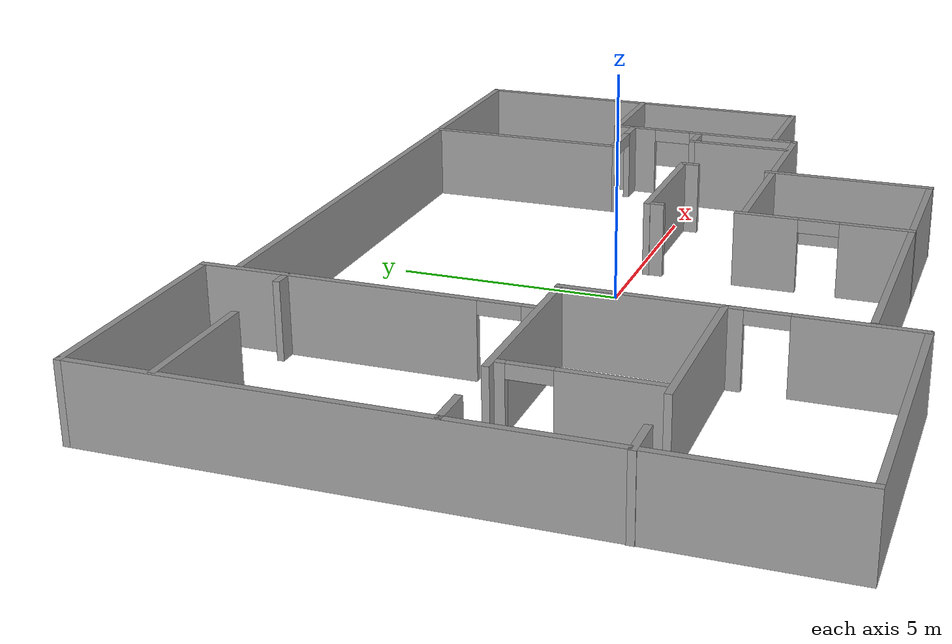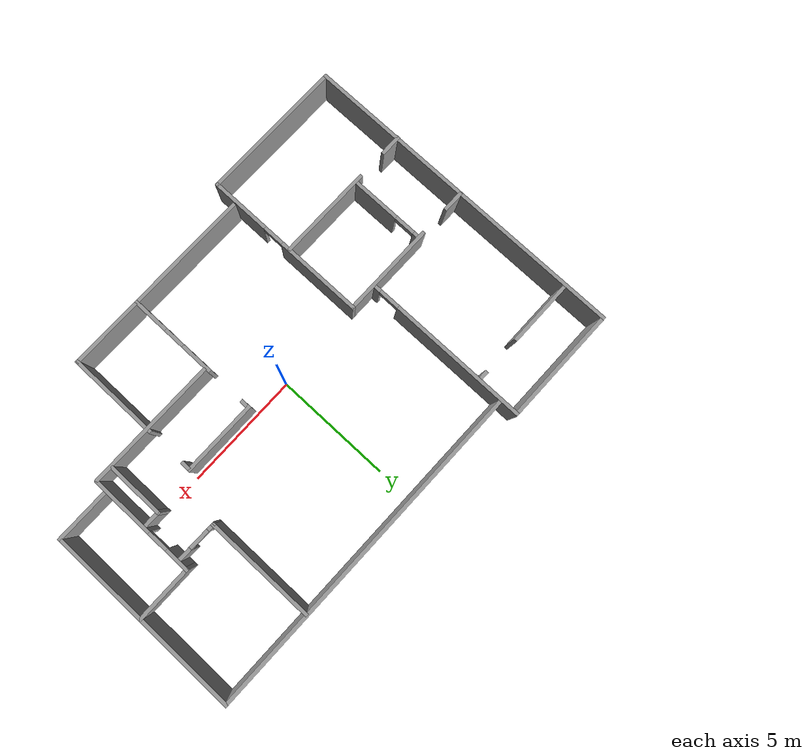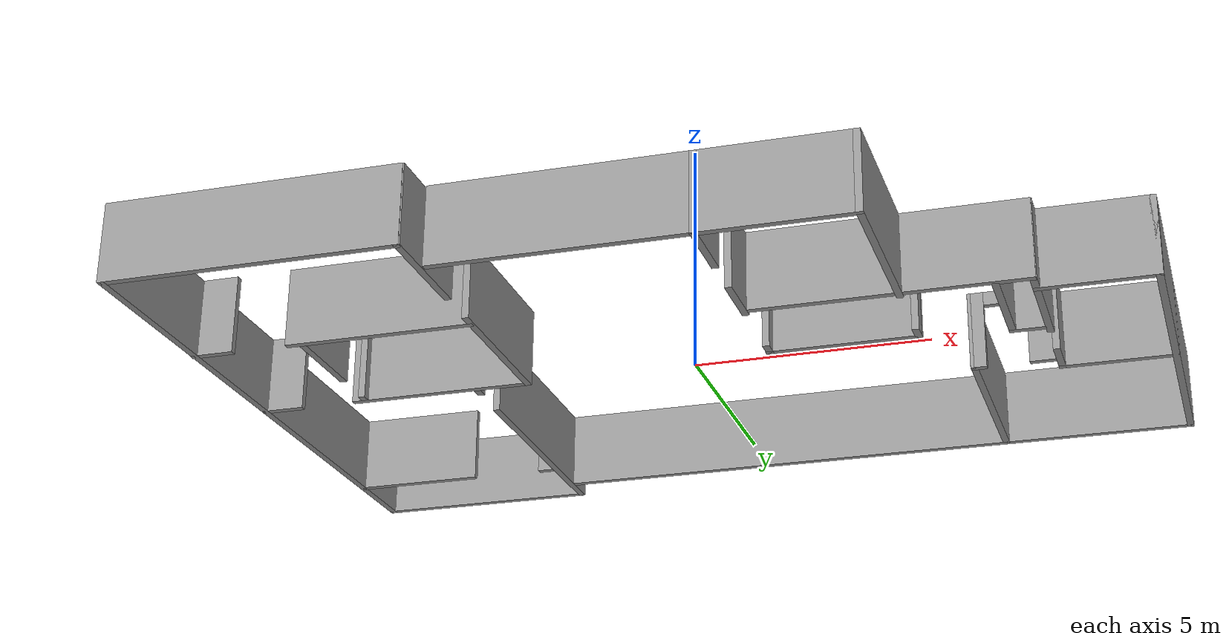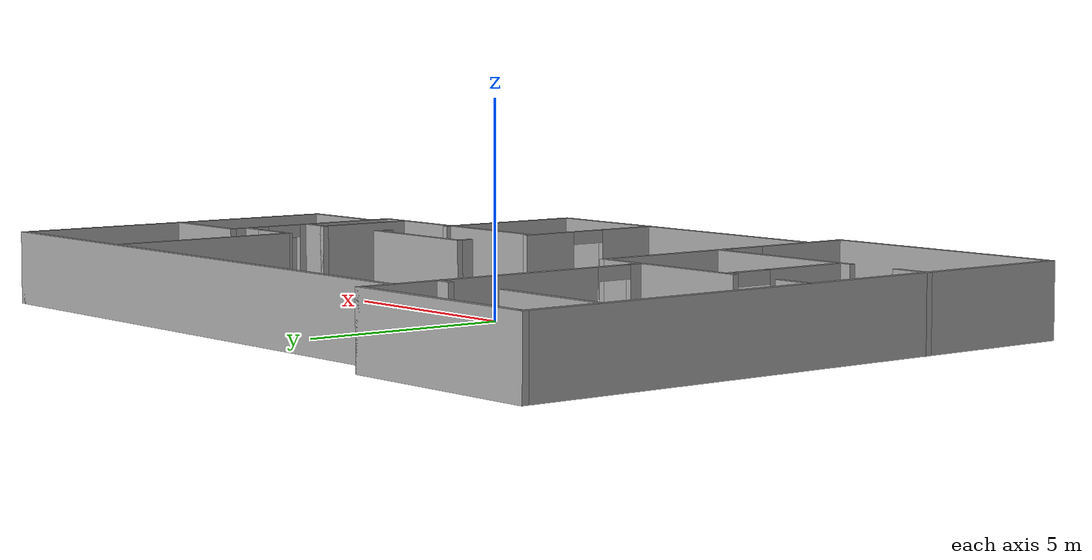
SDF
<?xml version='1.0'?>
<sdf version='1.7'>
  <model name='pangyon_home_plane_b'>
    <pose>-0.078 0.0655 0 0 -0 0</pose>
    <link name='Wall_100'>
      <collision name='Wall_100_Collision'>
        <geometry>
          <box>
            <size>8.5 0.15 1.7</size>
          </box>
        </geometry>
        <pose>0 0 0.85 0 -0 0</pose>
      </collision>
      <visual name='Wall_100_Visual'>
        <pose>0 0 0.85 0 -0 0</pose>
        <geometry>
          <box>
            <size>8.5 0.15 1.7</size>
          </box>
        </geometry>
        <material>
          <script>
            <uri>file://media/materials/scripts/gazebo.material</uri>
            <name>Gazebo/Grey</name>
          </script>
          <ambient>1 1 1 1</ambient>
        </material>
        <meta>
          <layer>0</layer>
        </meta>
      </visual>
      <pose>0.681452 -6.13258 0 0 -0 0</pose>
    </link>
    <link name='Wall_101'>
      <pose>4.85645 -3.20758 0 0 -0 1.5708</pose>
      <visual name='Wall_101_Visual_0'>
        <pose>-1.03494 0 0.85 0 -0 0</pose>
        <geometry>
          <box>
            <size>3.93013 0.15 1.7</size>
          </box>
        </geometry>
        <material>
          <script>
            <uri>file://media/materials/scripts/gazebo.material</uri>
            <name>Gazebo/Grey</name>
          </script>
          <ambient>1 1 1 1</ambient>
        </material>
        <meta>
          <layer>0</layer>
        </meta>
      </visual>
      <collision name='Wall_101_Collision_0'>
        <geometry>
          <box>
            <size>3.93013 0.15 1.7</size>
          </box>
        </geometry>
        <pose>-1.03494 0 0.85 0 -0 0</pose>
      </collision>
      <visual name='Wall_101_Visual_1'>
        <pose>2.76506 0 0.85 0 -0 0</pose>
        <geometry>
          <box>
            <size>0.469872 0.15 1.7</size>
          </box>
        </geometry>
        <material>
          <script>
            <uri>file://media/materials/scripts/gazebo.material</uri>
            <name>Gazebo/Grey</name>
          </script>
          <ambient>1 1 1 1</ambient>
        </material>
        <meta>
          <layer>0</layer>
        </meta>
      </visual>
      <collision name='Wall_101_Collision_1'>
        <geometry>
          <box>
            <size>0.469872 0.15 1.7</size>
          </box>
        </geometry>
        <pose>2.76506 0 0.85 0 -0 0</pose>
      </collision>
    </link>
    <link name='Wall_105'>
      <pose>1.74323 -3.20758 0 0 -0 -1.5708</pose>
      <visual name='Wall_105_Visual_0'>
        <pose>-2.77016 0 0.85 0 -0 0</pose>
        <geometry>
          <box>
            <size>0.459678 0.15 1.7</size>
          </box>
        </geometry>
        <material>
          <script>
            <uri>file://media/materials/scripts/gazebo.material</uri>
            <name>Gazebo/Grey</name>
          </script>
          <ambient>1 1 1 1</ambient>
        </material>
        <meta>
          <layer>0</layer>
        </meta>
      </visual>
      <collision name='Wall_105_Collision_0'>
        <geometry>
          <box>
            <size>0.459678 0.15 1.7</size>
          </box>
        </geometry>
        <pose>-2.77016 0 0.85 0 -0 0</pose>
      </collision>
      <visual name='Wall_105_Visual_1'>
        <pose>-0.230906 0 0.85 0 -0 0</pose>
        <geometry>
          <box>
            <size>1.41883 0.15 1.7</size>
          </box>
        </geometry>
        <material>
          <script>
            <uri>file://media/materials/scripts/gazebo.material</uri>
            <name>Gazebo/Grey</name>
          </script>
          <ambient>1 1 1 1</ambient>
        </material>
        <meta>
          <layer>0</layer>
        </meta>
      </visual>
      <collision name='Wall_105_Collision_1'>
        <geometry>
          <box>
            <size>1.41883 0.15 1.7</size>
          </box>
        </geometry>
        <pose>-0.230906 0 0.85 0 -0 0</pose>
      </collision>
      <visual name='Wall_105_Visual_2'>
        <pose>2.18926 0 0.85 0 -0 0</pose>
        <geometry>
          <box>
            <size>1.62149 0.15 1.7</size>
          </box>
        </geometry>
        <material>
          <script>
            <uri>file://media/materials/scripts/gazebo.material</uri>
            <name>Gazebo/Grey</name>
          </script>
          <ambient>1 1 1 1</ambient>
        </material>
        <meta>
          <layer>0</layer>
        </meta>
      </visual>
      <collision name='Wall_105_Collision_2'>
        <geometry>
          <box>
            <size>1.62149 0.15 1.7</size>
          </box>
        </geometry>
        <pose>2.18926 0 0.85 0 -0 0</pose>
      </collision>
      <visual name='Wall_105_Visual_3'>
        <pose>0.92851 0 1.55 0 -0 0</pose>
        <geometry>
          <box>
            <size>0.9 0.15 0.3</size>
          </box>
        </geometry>
        <material>
          <script>
            <uri>file://media/materials/scripts/gazebo.material</uri>
            <name>Gazebo/Grey</name>
          </script>
          <ambient>1 1 1 1</ambient>
        </material>
        <meta>
          <layer>0</layer>
        </meta>
      </visual>
      <collision name='Wall_105_Collision_3'>
        <geometry>
          <box>
            <size>0.9 0.15 0.3</size>
          </box>
        </geometry>
        <pose>0.92851 0 1.55 0 -0 0</pose>
      </collision>
    </link>
    <link name='Wall_107'>
      <pose>6.551 1.728 0 0 -0 3.13188</pose>
      <visual name='Wall_107_Visual_0'>
        <pose>-0.622737 0 0.85 0 -0 0</pose>
        <geometry>
          <box>
            <size>0.654525 0.15 1.7</size>
          </box>
        </geometry>
        <material>
          <script>
            <uri>file://media/materials/scripts/gazebo.material</uri>
            <name>Gazebo/Grey</name>
          </script>
          <ambient>1 1 1 1</ambient>
        </material>
        <meta>
          <layer>0</layer>
        </meta>
      </visual>
      <collision name='Wall_107_Collision_0'>
        <geometry>
          <box>
            <size>0.654525 0.15 1.7</size>
          </box>
        </geometry>
        <pose>-0.622737 0 0.85 0 -0 0</pose>
      </collision>
      <visual name='Wall_107_Visual_1'>
        <pose>0.777263 0 0.85 0 -0 0</pose>
        <geometry>
          <box>
            <size>0.345475 0.15 1.7</size>
          </box>
        </geometry>
        <material>
          <script>
            <uri>file://media/materials/scripts/gazebo.material</uri>
            <name>Gazebo/Grey</name>
          </script>
          <ambient>1 1 1 1</ambient>
        </material>
        <meta>
          <layer>0</layer>
        </meta>
      </visual>
      <collision name='Wall_107_Collision_1'>
        <geometry>
          <box>
            <size>0.345475 0.15 1.7</size>
          </box>
        </geometry>
        <pose>0.777263 0 0.85 0 -0 0</pose>
      </collision>
      <visual name='Wall_107_Visual_2'>
        <pose>0.154525 0 1.55 0 -0 0</pose>
        <geometry>
          <box>
            <size>0.9 0.15 0.3</size>
          </box>
        </geometry>
        <material>
          <script>
            <uri>file://media/materials/scripts/gazebo.material</uri>
            <name>Gazebo/Grey</name>
          </script>
          <ambient>1 1 1 1</ambient>
        </material>
        <meta>
          <layer>0</layer>
        </meta>
      </visual>
      <collision name='Wall_107_Collision_2'>
        <geometry>
          <box>
            <size>0.9 0.15 0.3</size>
          </box>
        </geometry>
        <pose>0.154525 0 1.55 0 -0 0</pose>
      </collision>
    </link>
    <link name='Wall_109'>
      <collision name='Wall_109_Collision'>
        <geometry>
          <box>
            <size>4.75 0.15 1.7</size>
          </box>
        </geometry>
        <pose>0 0 0.85 0 -0 0</pose>
      </collision>
      <visual name='Wall_109_Visual'>
        <pose>0 0 0.85 0 -0 0</pose>
        <geometry>
          <box>
            <size>4.75 0.15 1.7</size>
          </box>
        </geometry>
        <material>
          <script>
            <uri>file://media/materials/scripts/gazebo.material</uri>
            <name>Gazebo/Grey</name>
          </script>
          <ambient>1 1 1 1</ambient>
        </material>
        <meta>
          <layer>0</layer>
        </meta>
      </visual>
      <pose>5.676 4.0365 0 0 -0 1.5708</pose>
    </link>
    <link name='Wall_111'>
      <collision name='Wall_111_Collision'>
        <geometry>
          <box>
            <size>5.75 0.15 1.7</size>
          </box>
        </geometry>
        <pose>0 0 0.85 0 -0 0</pose>
      </collision>
      <visual name='Wall_111_Visual'>
        <pose>0 0 0.85 0 -0 0</pose>
        <geometry>
          <box>
            <size>5.75 0.15 1.7</size>
          </box>
        </geometry>
        <material>
          <script>
            <uri>file://media/materials/scripts/gazebo.material</uri>
            <name>Gazebo/Grey</name>
          </script>
          <ambient>1 1 1 1</ambient>
        </material>
        <meta>
          <layer>0</layer>
        </meta>
      </visual>
      <pose>4.653 -2.4725 0 0 -0 0</pose>
    </link>
    <link name='Wall_115'>
      <pose>7.47 -0.1525 0 0 -0 -1.5708</pose>
      <visual name='Wall_115_Visual_0'>
        <pose>-1.82638 0 0.85 0 -0 0</pose>
        <geometry>
          <box>
            <size>1.09723 0.15 1.7</size>
          </box>
        </geometry>
        <material>
          <script>
            <uri>file://media/materials/scripts/gazebo.material</uri>
            <name>Gazebo/Grey</name>
          </script>
          <ambient>1 1 1 1</ambient>
        </material>
        <meta>
          <layer>0</layer>
        </meta>
      </visual>
      <collision name='Wall_115_Collision_0'>
        <geometry>
          <box>
            <size>1.09723 0.15 1.7</size>
          </box>
        </geometry>
        <pose>-1.82638 0 0.85 0 -0 0</pose>
      </collision>
      <visual name='Wall_115_Visual_1'>
        <pose>0.998618 0 0.85 0 -0 0</pose>
        <geometry>
          <box>
            <size>2.75277 0.15 1.7</size>
          </box>
        </geometry>
        <material>
          <script>
            <uri>file://media/materials/scripts/gazebo.material</uri>
            <name>Gazebo/Grey</name>
          </script>
          <ambient>1 1 1 1</ambient>
        </material>
        <meta>
          <layer>0</layer>
        </meta>
      </visual>
      <collision name='Wall_115_Collision_1'>
        <geometry>
          <box>
            <size>2.75277 0.15 1.7</size>
          </box>
        </geometry>
        <pose>0.998618 0 0.85 0 -0 0</pose>
      </collision>
      <visual name='Wall_115_Visual_2'>
        <pose>-0.827765 0 1.55 0 -0 0</pose>
        <geometry>
          <box>
            <size>0.9 0.15 0.3</size>
          </box>
        </geometry>
        <material>
          <script>
            <uri>file://media/materials/scripts/gazebo.material</uri>
            <name>Gazebo/Grey</name>
          </script>
          <ambient>1 1 1 1</ambient>
        </material>
        <meta>
          <layer>0</layer>
        </meta>
      </visual>
      <collision name='Wall_115_Collision_2'>
        <geometry>
          <box>
            <size>0.9 0.15 0.3</size>
          </box>
        </geometry>
        <pose>-0.827765 0 1.55 0 -0 0</pose>
      </collision>
    </link>
    <link name='Wall_117'>
      <collision name='Wall_117_Collision'>
        <geometry>
          <box>
            <size>0.75 0.15 1.7</size>
          </box>
        </geometry>
        <pose>0 0 0.85 0 -0 0</pose>
      </collision>
      <visual name='Wall_117_Visual'>
        <pose>0 0 0.85 0 -0 0</pose>
        <geometry>
          <box>
            <size>0.75 0.15 1.7</size>
          </box>
        </geometry>
        <material>
          <script>
            <uri>file://media/materials/scripts/gazebo.material</uri>
            <name>Gazebo/Grey</name>
          </script>
          <ambient>1 1 1 1</ambient>
        </material>
        <meta>
          <layer>0</layer>
        </meta>
      </visual>
      <pose>7.034 -0.0325 0 0 -0 0</pose>
    </link>
    <link name='Wall_119'>
      <collision name='Wall_119_Collision'>
        <geometry>
          <box>
            <size>2.5 0.15 1.7</size>
          </box>
        </geometry>
        <pose>0 0 0.85 0 -0 0</pose>
      </collision>
      <visual name='Wall_119_Visual'>
        <pose>0 0 0.85 0 -0 0</pose>
        <geometry>
          <box>
            <size>2.5 0.15 1.7</size>
          </box>
        </geometry>
        <material>
          <script>
            <uri>file://media/materials/scripts/gazebo.material</uri>
            <name>Gazebo/Grey</name>
          </script>
          <ambient>1 1 1 1</ambient>
        </material>
        <meta>
          <layer>0</layer>
        </meta>
      </visual>
      <pose>6.734 -1.2075 0 0 -0 -1.5708</pose>
    </link>
    <link name='Wall_121'>
      <pose>-6.77 -3.3315 0 0 -0 0</pose>
      <visual name='Wall_121_Visual_0'>
        <pose>-2.65074 0 0.85 0 -0 0</pose>
        <geometry>
          <box>
            <size>0.948524 0.15 1.7</size>
          </box>
        </geometry>
        <material>
          <script>
            <uri>file://media/materials/scripts/gazebo.material</uri>
            <name>Gazebo/Grey</name>
          </script>
          <ambient>1 1 1 1</ambient>
        </material>
        <meta>
          <layer>0</layer>
        </meta>
      </visual>
      <collision name='Wall_121_Collision_0'>
        <geometry>
          <box>
            <size>0.948524 0.15 1.7</size>
          </box>
        </geometry>
        <pose>-2.65074 0 0.85 0 -0 0</pose>
      </collision>
      <visual name='Wall_121_Visual_1'>
        <pose>1.07426 0 0.85 0 -0 0</pose>
        <geometry>
          <box>
            <size>4.10148 0.15 1.7</size>
          </box>
        </geometry>
        <material>
          <script>
            <uri>file://media/materials/scripts/gazebo.material</uri>
            <name>Gazebo/Grey</name>
          </script>
          <ambient>1 1 1 1</ambient>
        </material>
        <meta>
          <layer>0</layer>
        </meta>
      </visual>
      <collision name='Wall_121_Collision_1'>
        <geometry>
          <box>
            <size>4.10148 0.15 1.7</size>
          </box>
        </geometry>
        <pose>1.07426 0 0.85 0 -0 0</pose>
      </collision>
    </link>
    <link name='Wall_124'>
      <pose>-7.40522 -1.63203 0 0 -0 -1.5708</pose>
      <visual name='Wall_124_Visual_0'>
        <pose>-1.47242 0 0.85 0 -0 0</pose>
        <geometry>
          <box>
            <size>0.305154 0.15 1.7</size>
          </box>
        </geometry>
        <material>
          <script>
            <uri>file://media/materials/scripts/gazebo.material</uri>
            <name>Gazebo/Grey</name>
          </script>
          <ambient>1 1 1 1</ambient>
        </material>
        <meta>
          <layer>0</layer>
        </meta>
      </visual>
      <collision name='Wall_124_Collision_0'>
        <geometry>
          <box>
            <size>0.305154 0.15 1.7</size>
          </box>
        </geometry>
        <pose>-1.47242 0 0.85 0 -0 0</pose>
      </collision>
      <visual name='Wall_124_Visual_1'>
        <pose>0.602577 0 0.85 0 -0 0</pose>
        <geometry>
          <box>
            <size>2.04485 0.15 1.7</size>
          </box>
        </geometry>
        <material>
          <script>
            <uri>file://media/materials/scripts/gazebo.material</uri>
            <name>Gazebo/Grey</name>
          </script>
          <ambient>1 1 1 1</ambient>
        </material>
        <meta>
          <layer>0</layer>
        </meta>
      </visual>
      <collision name='Wall_124_Collision_1'>
        <geometry>
          <box>
            <size>2.04485 0.15 1.7</size>
          </box>
        </geometry>
        <pose>0.602577 0 0.85 0 -0 0</pose>
      </collision>
      <visual name='Wall_124_Visual_2'>
        <pose>-0.869846 0 1.55 0 -0 0</pose>
        <geometry>
          <box>
            <size>0.9 0.15 0.3</size>
          </box>
        </geometry>
        <material>
          <script>
            <uri>file://media/materials/scripts/gazebo.material</uri>
            <name>Gazebo/Grey</name>
          </script>
          <ambient>1 1 1 1</ambient>
        </material>
        <meta>
          <layer>0</layer>
        </meta>
      </visual>
      <collision name='Wall_124_Collision_2'>
        <geometry>
          <box>
            <size>0.9 0.15 0.3</size>
          </box>
        </geometry>
        <pose>-0.869846 0 1.55 0 -0 0</pose>
      </collision>
    </link>
    <link name='Wall_126'>
      <pose>-7.314 5.2955 0 0 -0 0</pose>
      <visual name='Wall_126_Visual_0'>
        <pose>-1.04001 0 0.85 0 -0 0</pose>
        <geometry>
          <box>
            <size>2.91997 0.15 1.7</size>
          </box>
        </geometry>
        <material>
          <script>
            <uri>file://media/materials/scripts/gazebo.material</uri>
            <name>Gazebo/Grey</name>
          </script>
          <ambient>1 1 1 1</ambient>
        </material>
        <meta>
          <layer>0</layer>
        </meta>
      </visual>
      <collision name='Wall_126_Collision_0'>
        <geometry>
          <box>
            <size>2.91997 0.15 1.7</size>
          </box>
        </geometry>
        <pose>-1.04001 0 0.85 0 -0 0</pose>
      </collision>
      <visual name='Wall_126_Visual_1'>
        <pose>2.25999 0 0.85 0 -0 0</pose>
        <geometry>
          <box>
            <size>0.480025 0.15 1.7</size>
          </box>
        </geometry>
        <material>
          <script>
            <uri>file://media/materials/scripts/gazebo.material</uri>
            <name>Gazebo/Grey</name>
          </script>
          <ambient>1 1 1 1</ambient>
        </material>
        <meta>
          <layer>0</layer>
        </meta>
      </visual>
      <collision name='Wall_126_Collision_1'>
        <geometry>
          <box>
            <size>0.480025 0.15 1.7</size>
          </box>
        </geometry>
        <pose>2.25999 0 0.85 0 -0 0</pose>
      </collision>
    </link>
    <link name='Wall_128'>
      <collision name='Wall_128_Collision'>
        <geometry>
          <box>
            <size>3.27645 0.15 1.7</size>
          </box>
        </geometry>
        <pose>0 0 0.85 0 -0 0</pose>
      </collision>
      <visual name='Wall_128_Visual'>
        <pose>0 0 0.85 0 -0 0</pose>
        <geometry>
          <box>
            <size>3.27645 0.15 1.7</size>
          </box>
        </geometry>
        <material>
          <script>
            <uri>file://media/materials/scripts/gazebo.material</uri>
            <name>Gazebo/Grey</name>
          </script>
          <ambient>1 1 1 1</ambient>
        </material>
        <meta>
          <layer>0</layer>
        </meta>
      </visual>
      <pose>3.29323 -0.282578 0 0 -0 0</pose>
    </link>
    <link name='Wall_133'>
      <pose>-6.727 -0.0355 0 0 -0 3.14159</pose>
      <visual name='Wall_133_Visual_0'>
        <pose>-1.07307 0 0.85 0 -0 0</pose>
        <geometry>
          <box>
            <size>4.10386 0.15 1.7</size>
          </box>
        </geometry>
        <material>
          <script>
            <uri>file://media/materials/scripts/gazebo.material</uri>
            <name>Gazebo/Grey</name>
          </script>
          <ambient>1 1 1 1</ambient>
        </material>
        <meta>
          <layer>0</layer>
        </meta>
      </visual>
      <collision name='Wall_133_Collision_0'>
        <geometry>
          <box>
            <size>4.10386 0.15 1.7</size>
          </box>
        </geometry>
        <pose>-1.07307 0 0.85 0 -0 0</pose>
      </collision>
      <visual name='Wall_133_Visual_1'>
        <pose>2.65193 0 0.85 0 -0 0</pose>
        <geometry>
          <box>
            <size>0.946143 0.15 1.7</size>
          </box>
        </geometry>
        <material>
          <script>
            <uri>file://media/materials/scripts/gazebo.material</uri>
            <name>Gazebo/Grey</name>
          </script>
          <ambient>1 1 1 1</ambient>
        </material>
        <meta>
          <layer>0</layer>
        </meta>
      </visual>
      <collision name='Wall_133_Collision_1'>
        <geometry>
          <box>
            <size>0.946143 0.15 1.7</size>
          </box>
        </geometry>
        <pose>2.65193 0 0.85 0 -0 0</pose>
      </collision>
    </link>
    <link name='Wall_76'>
      <collision name='Wall_76_Collision'>
        <geometry>
          <box>
            <size>14.4468 0.15 1.7</size>
          </box>
        </geometry>
        <pose>0 0 0.85 0 -0 0</pose>
      </collision>
      <visual name='Wall_76_Visual'>
        <pose>0 0 0.85 0 -0 0</pose>
        <geometry>
          <box>
            <size>14.4468 0.15 1.7</size>
          </box>
        </geometry>
        <material>
          <script>
            <uri>file://media/materials/scripts/gazebo.material</uri>
            <name>Gazebo/Grey</name>
          </script>
          <ambient>1 1 1 1</ambient>
        </material>
        <meta>
          <layer>0</layer>
        </meta>
      </visual>
      <pose>-9.804 -0 0 0 -0 -1.5708</pose>
    </link>
    <link name='Wall_81'>
      <collision name='Wall_81_Collision'>
        <geometry>
          <box>
            <size>5.1 0.15 1.7</size>
          </box>
        </geometry>
        <pose>0 0 0.85 0 -0 0</pose>
      </collision>
      <visual name='Wall_81_Visual'>
        <pose>0 0 0.85 0 -0 0</pose>
        <geometry>
          <box>
            <size>5.1 0.15 1.7</size>
          </box>
        </geometry>
        <material>
          <script>
            <uri>file://media/materials/scripts/gazebo.material</uri>
            <name>Gazebo/Grey</name>
          </script>
          <ambient>1 1 1 1</ambient>
        </material>
        <meta>
          <layer>0</layer>
        </meta>
      </visual>
      <pose>-7.329 7.1485 0 0 -0 0</pose>
    </link>
    <link name='Wall_83'>
      <pose>-4.854 3.6235 0 0 -0 -1.5708</pose>
      <visual name='Wall_83_Visual_0'>
        <pose>-0.597266 0 0.85 0 -0 0</pose>
        <geometry>
          <box>
            <size>6.00547 0.15 1.7</size>
          </box>
        </geometry>
        <material>
          <script>
            <uri>file://media/materials/scripts/gazebo.material</uri>
            <name>Gazebo/Grey</name>
          </script>
          <ambient>1 1 1 1</ambient>
        </material>
        <meta>
          <layer>0</layer>
        </meta>
      </visual>
      <collision name='Wall_83_Collision_0'>
        <geometry>
          <box>
            <size>6.00547 0.15 1.7</size>
          </box>
        </geometry>
        <pose>-0.597266 0 0.85 0 -0 0</pose>
      </collision>
      <visual name='Wall_83_Visual_1'>
        <pose>3.45273 0 0.85 0 -0 0</pose>
        <geometry>
          <box>
            <size>0.294532 0.15 1.7</size>
          </box>
        </geometry>
        <material>
          <script>
            <uri>file://media/materials/scripts/gazebo.material</uri>
            <name>Gazebo/Grey</name>
          </script>
          <ambient>1 1 1 1</ambient>
        </material>
        <meta>
          <layer>0</layer>
        </meta>
      </visual>
      <collision name='Wall_83_Collision_1'>
        <geometry>
          <box>
            <size>0.294532 0.15 1.7</size>
          </box>
        </geometry>
        <pose>3.45273 0 0.85 0 -0 0</pose>
      </collision>
      <visual name='Wall_83_Visual_2'>
        <pose>2.85547 0 1.55 0 -0 0</pose>
        <geometry>
          <box>
            <size>0.9 0.15 0.3</size>
          </box>
        </geometry>
        <material>
          <script>
            <uri>file://media/materials/scripts/gazebo.material</uri>
            <name>Gazebo/Grey</name>
          </script>
          <ambient>1 1 1 1</ambient>
        </material>
        <meta>
          <layer>0</layer>
        </meta>
      </visual>
      <collision name='Wall_83_Collision_2'>
        <geometry>
          <box>
            <size>0.9 0.15 0.3</size>
          </box>
        </geometry>
        <pose>2.85547 0 1.55 0 -0 0</pose>
      </collision>
    </link>
    <link name='Wall_87'>
      <pose>-3.677 -3.5855 0 0 -0 -1.5708</pose>
      <visual name='Wall_87_Visual_0'>
        <pose>-1.75182 0 0.85 0 -0 0</pose>
        <geometry>
          <box>
            <size>3.74636 0.15 1.7</size>
          </box>
        </geometry>
        <material>
          <script>
            <uri>file://media/materials/scripts/gazebo.material</uri>
            <name>Gazebo/Grey</name>
          </script>
          <ambient>1 1 1 1</ambient>
        </material>
        <meta>
          <layer>0</layer>
        </meta>
      </visual>
      <collision name='Wall_87_Collision_0'>
        <geometry>
          <box>
            <size>3.74636 0.15 1.7</size>
          </box>
        </geometry>
        <pose>-1.75182 0 0.85 0 -0 0</pose>
      </collision>
      <visual name='Wall_87_Visual_1'>
        <pose>2.32318 0 0.85 0 -0 0</pose>
        <geometry>
          <box>
            <size>2.60364 0.15 1.7</size>
          </box>
        </geometry>
        <material>
          <script>
            <uri>file://media/materials/scripts/gazebo.material</uri>
            <name>Gazebo/Grey</name>
          </script>
          <ambient>1 1 1 1</ambient>
        </material>
        <meta>
          <layer>0</layer>
        </meta>
      </visual>
      <collision name='Wall_87_Collision_1'>
        <geometry>
          <box>
            <size>2.60364 0.15 1.7</size>
          </box>
        </geometry>
        <pose>2.32318 0 0.85 0 -0 0</pose>
      </collision>
      <visual name='Wall_87_Visual_2'>
        <pose>0.571357 0 1.55 0 -0 0</pose>
        <geometry>
          <box>
            <size>0.9 0.15 0.3</size>
          </box>
        </geometry>
        <material>
          <script>
            <uri>file://media/materials/scripts/gazebo.material</uri>
            <name>Gazebo/Grey</name>
          </script>
          <ambient>1 1 1 1</ambient>
        </material>
        <meta>
          <layer>0</layer>
        </meta>
      </visual>
      <collision name='Wall_87_Collision_2'>
        <geometry>
          <box>
            <size>0.9 0.15 0.3</size>
          </box>
        </geometry>
        <pose>0.571357 0 1.55 0 -0 0</pose>
      </collision>
    </link>
    <link name='Wall_91'>
      <collision name='Wall_91_Collision'>
        <geometry>
          <box>
            <size>6.25 0.15 1.7</size>
          </box>
        </geometry>
        <pose>0 0 0.85 0 -0 0</pose>
      </collision>
      <visual name='Wall_91_Visual'>
        <pose>0 0 0.85 0 -0 0</pose>
        <geometry>
          <box>
            <size>6.25 0.15 1.7</size>
          </box>
        </geometry>
        <material>
          <script>
            <uri>file://media/materials/scripts/gazebo.material</uri>
            <name>Gazebo/Grey</name>
          </script>
          <ambient>1 1 1 1</ambient>
        </material>
        <meta>
          <layer>0</layer>
        </meta>
      </visual>
      <pose>-6.754 -7.1485 0 0 -0 0</pose>
    </link>
    <link name='Wall_93'>
      <collision name='Wall_93_Collision'>
        <geometry>
          <box>
            <size>14.8 0.15 1.7</size>
          </box>
        </geometry>
        <pose>0 0 0.85 0 -0 0</pose>
      </collision>
      <visual name='Wall_93_Visual'>
        <pose>0 0 0.85 0 -0 0</pose>
        <geometry>
          <box>
            <size>14.8 0.15 1.7</size>
          </box>
        </geometry>
        <material>
          <script>
            <uri>file://media/materials/scripts/gazebo.material</uri>
            <name>Gazebo/Grey</name>
          </script>
          <ambient>1 1 1 1</ambient>
        </material>
        <meta>
          <layer>0</layer>
        </meta>
      </visual>
      <pose>2.495 6.3975 0 0 -0 0</pose>
    </link>
    <link name='Wall_95'>
      <collision name='Wall_95_Collision'>
        <geometry>
          <box>
            <size>8.5 0.15 1.7</size>
          </box>
        </geometry>
        <pose>0 0 0.85 0 -0 0</pose>
      </collision>
      <visual name='Wall_95_Visual'>
        <pose>0 0 0.85 0 -0 0</pose>
        <geometry>
          <box>
            <size>8.5 0.15 1.7</size>
          </box>
        </geometry>
        <material>
          <script>
            <uri>file://media/materials/scripts/gazebo.material</uri>
            <name>Gazebo/Grey</name>
          </script>
          <ambient>1 1 1 1</ambient>
        </material>
        <meta>
          <layer>0</layer>
        </meta>
      </visual>
      <pose>9.82 2.2225 0 0 -0 -1.5708</pose>
    </link>
    <link name='Wall_96'>
      <collision name='Wall_96_Collision'>
        <geometry>
          <box>
            <size>2.5 0.15 1.7</size>
          </box>
        </geometry>
        <pose>0 0 0.85 0 -0 0</pose>
      </collision>
      <visual name='Wall_96_Visual'>
        <pose>0 0 0.85 0 -0 0</pose>
        <geometry>
          <box>
            <size>2.5 0.15 1.7</size>
          </box>
        </geometry>
        <material>
          <script>
            <uri>file://media/materials/scripts/gazebo.material</uri>
            <name>Gazebo/Grey</name>
          </script>
          <ambient>1 1 1 1</ambient>
        </material>
        <meta>
          <layer>0</layer>
        </meta>
      </visual>
      <pose>8.645 -1.9525 0 0 -0 3.14159</pose>
    </link>
    <link name='Wall_98'>
      <collision name='Wall_98_Collision'>
        <geometry>
          <box>
            <size>2.5 0.15 1.7</size>
          </box>
        </geometry>
        <pose>0 0 0.85 0 -0 0</pose>
      </collision>
      <visual name='Wall_98_Visual'>
        <pose>0 0 0.85 0 -0 0</pose>
        <geometry>
          <box>
            <size>2.5 0.15 1.7</size>
          </box>
        </geometry>
        <material>
          <script>
            <uri>file://media/materials/scripts/gazebo.material</uri>
            <name>Gazebo/Grey</name>
          </script>
          <ambient>1 1 1 1</ambient>
        </material>
        <meta>
          <layer>0</layer>
        </meta>
      </visual>
      <pose>8.645 2.1475 0 0 -0 0</pose>
    </link>
    <static>1</static>
  </model>
</sdf>
